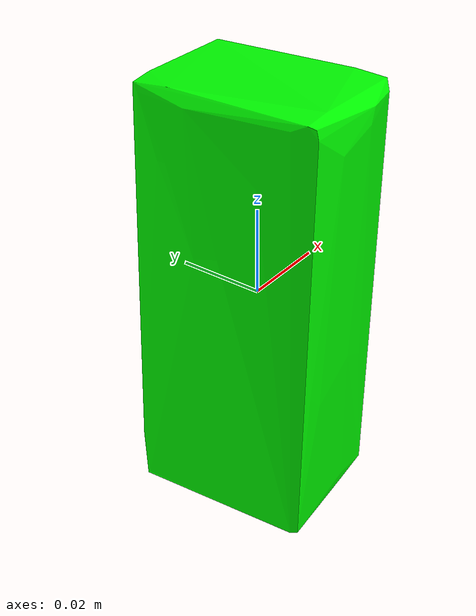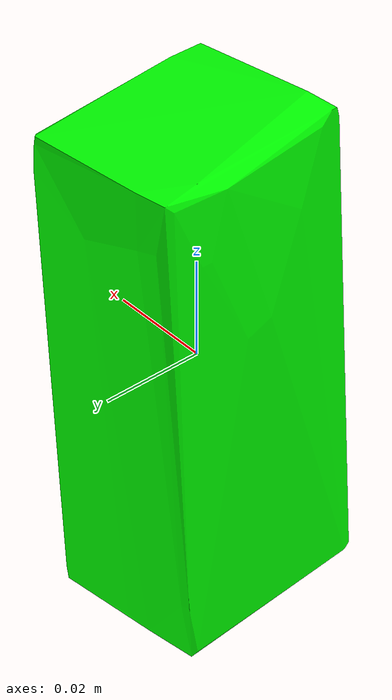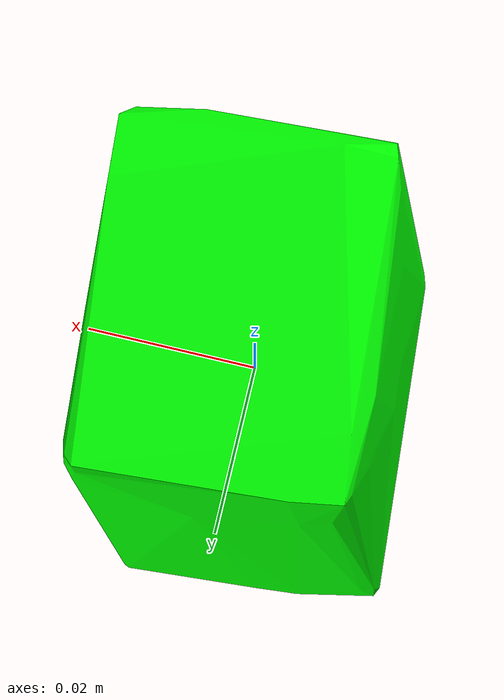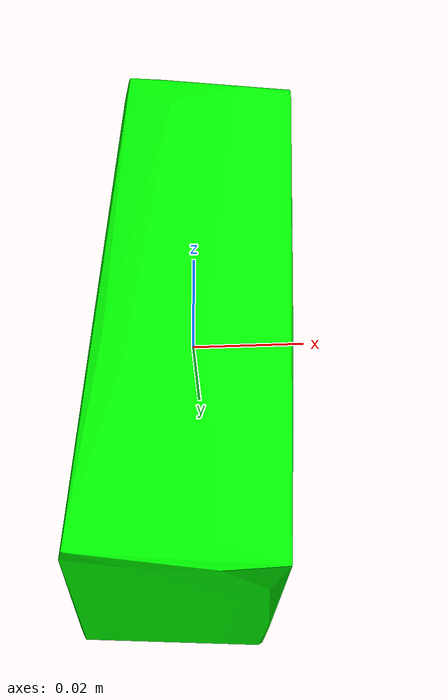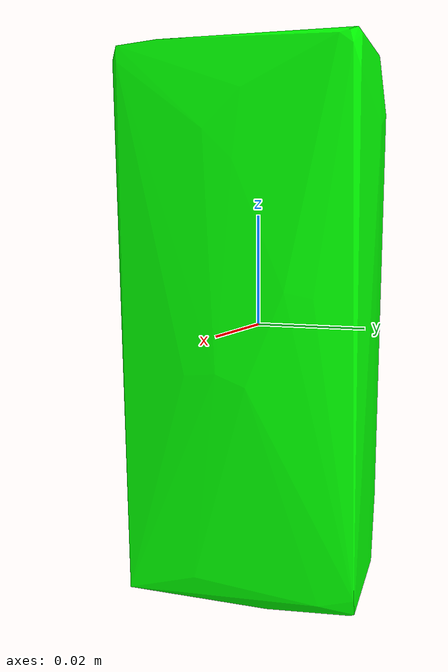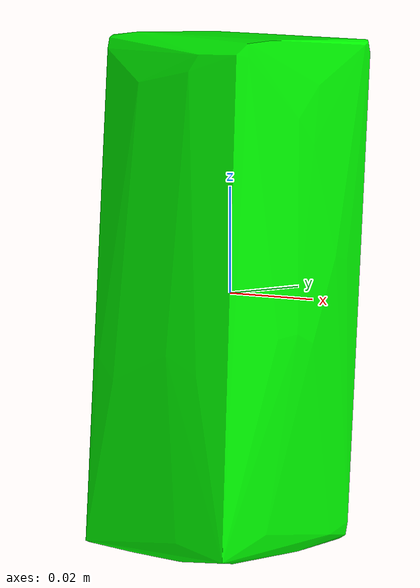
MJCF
<mujoco model="YellowSaltCube">
  <asset>
    <mesh file="meshes/YellowSaltCube/YellowSaltCube_0.stl" name="YellowSaltCube_0"/>
  </asset>
  <worldbody>
    <body>
      <body name="collision">
        <geom condim="4" density="100" friction="1.5 0.3 0.1" group="1" mesh="YellowSaltCube_0" pos="0 0 0" rgba="0 1 0 1" solimp="0.998 0.998 0.001" solref="0.002 1" type="mesh"/>
      </body>
      <body name="visual">
        <geom conaffinity="0" contype="0" group="0" mass="0.0001" mesh="YellowSaltCube_0" pos="0 0 0" rgba="0 1 0 1" type="mesh"/>
      </body>
      <site name="bottom_site" pos="0 0 -0.06" rgba="0 0 0 0" size="0.005"/>
      <site name="top_site" pos="0 0 0.04" rgba="0 0 0 0" size="0.005"/>
      <site name="horizontal_radius_site" pos="0.025 0.025 0" rgba="0 0 0 0" size="0.005"/>
    </body>
  </worldbody>
</mujoco>
